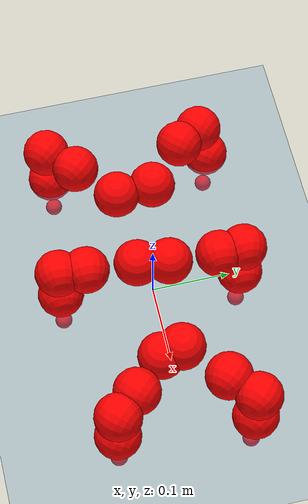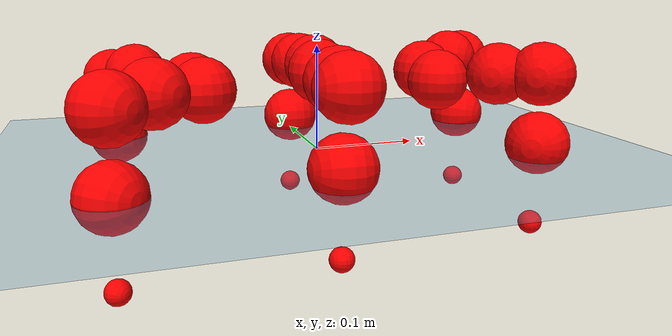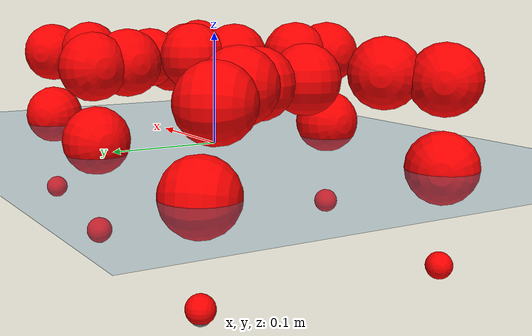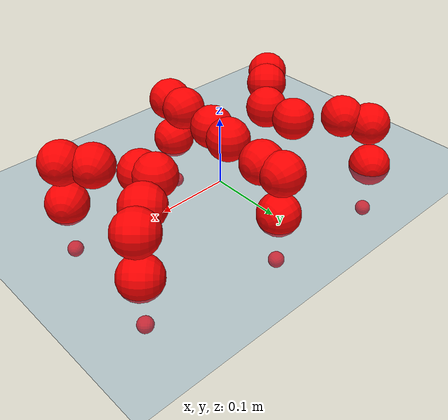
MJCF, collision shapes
<mujoco model="Golem">
  <compiler angle="radian" assetdir="assets" balanceinertia="true" inertiafromgeom="false"/>

  <option timestep="0.005" density="1.2" viscosity="2e-05"/>

  <size nkey="1"/>

  <visual>
    <quality shadowsize="8192"/>
    <map shadowclip="0.5"/>
  </visual>

  <default>
    <default class="/">
      <joint armature="0.01" damping="0.01" frictionloss="0.01"/>
      <geom contype="0" conaffinity="0" group="1" solref="-1000 -80"/>
      <site size="0.01 0.005 0.005" group="5"/>
      <general forcelimited="true" biastype="affine" gainprm="25" biasprm="0 -25 -0.5"/>
      <default class="visual">
        <geom type="mesh" group="2"/>
      </default>
      <default class="collision">
        <geom group="3"/>
      </default>
      <default class="foot">
        <geom size="0.01 0 0" condim="6" group="4" priority="1" solimp="0.015 1 0.01"/>
      </default>
      <default class="reward_collision_sphere">
        <geom group="5" rgba="1 0 0 1"/>
      </default>
    </default>
  </default>

  <asset>
    <texture type="skybox" colorspace="auto" name="//unnamed_texture_0" builtin="gradient" rgb1="0.95 0.95 0.95" rgb2="0.95 0.95 0.95" width="100" height="600"/>
    <texture type="2d" colorspace="auto" name="texplane" builtin="checker" rgb1="0.345 0.575 0.748" rgb2="0.345 0.575 0.748" markrgb="1 1 1" width="512" height="512"/>
    <material name="MatPlane" class="/" texture="texplane" texuniform="true" texrepeat="2 2" specular="0.9"/>
    <mesh name="body" class="/" file="body.stl" scale="0.001 0.001 0.001"/>
    <mesh name="coxa" class="/" file="coxa.stl" scale="0.001 0.001 0.001"/>
    <mesh name="femur" class="/" file="femur.stl" scale="0.001 0.001 0.001"/>
    <mesh name="tibia" class="/" file="tibia.stl" scale="0.001 0.001 0.001"/>
    <mesh name="tarsus" class="/" file="tarsus.stl" scale="0.001 0.001 0.001"/>
  </asset>

  <worldbody>
    <geom name="floor" class="/" size="100 100 0.125" type="plane" group="0" material="MatPlane"/>
    <light name="toplight_shadow" class="/" pos="0 0 5" dir="0.0990148 0.0990148 -0.990148" type="directional" ambient="0.04 0.04 0.04" diffuse="0.55 0.55 0.55" specular="0.12 0.12 0.12"/>
    <light name="toplight_fill" class="/" pos="0 0 5" dir="0.0990148 0.0990148 -0.990148" type="directional" castshadow="false" ambient="0.04 0.04 0.04" diffuse="0.3 0.3 0.3" specular="0.08 0.08 0.08"/>
    <body name="trunk" pos="-0.000636636 0.000680999 0.00183857" quat="0.999993 -0.00325394 0.00154963 0.000617212">
      <inertial pos="0.00170824 -0.00184693 -0.00445528" quat="1 0.000189027 -6.87664e-05 0.000978094" mass="1.34023" diaginertia="0.00213328 6.86448e-05 0.0165982"/>
      <joint name="//unnamed_joint_0" type="free"/>
      <geom name="//unnamed_geom_1" class="/" pos="0 0 0.0705378" quat="1 0 0 0" type="mesh" rgba="0.9 0.9 0.9 1" mesh="body"/>
      <site name="imu" class="/" pos="0.0626651 0.00749869 0.110838" size="0.00733224"/>
      <camera name="track" class="/" pos="0 -0.733704 0" quat="0.707107 0.707107 0 0" mode="trackcom"/>
      <camera name="ego_camera" class="/" pos="0.0949867 0 0.110215" quat="-0.5 -0.5 0.5 0.5"/>
      <body name="coxa_RR" pos="-0.125931 -0.0379096 0.0641153" quat="0.38011 -0.00207437 0.000850984 -0.924938">
        <inertial pos="0.000627974 -0.00117009 -0.00366294" quat="0.999936 -0.00185875 -0.011012 0.00198517" mass="0.0729545" diaginertia="0.00199524 6.37922e-05 0.0151861"/>
        <joint name="coxa_joint_RR" class="/" pos="0 0 0" axis="-0.0141514 -0.00132572 -0.999899" range="-3.0628 3.25318" armature="0.00720374" damping="0.0034784" frictionloss="0.00673485"/>
        <geom name="//unnamed_geom_2" class="/" type="mesh" rgba="0.2 0.2 0.2 1" mesh="coxa"/>
        <geom name="//unnamed_geom_3" class="reward_collision_sphere" size="0.029329" pos="-0.02192 0 0"/>
        <body name="femur_RR" pos="0.041058 -0.000427623 0.00580296" quat="0.499889 -0.499683 0.500852 0.499575">
          <inertial pos="-0.000202867 -0.000380567 -0.00178509" quat="0.999945 -0.0073473 -0.00611905 0.00419725" mass="0.0800106" diaginertia="0.00205711 6.51882e-05 0.0159008"/>
          <joint name="femur_joint_RR" class="/" pos="0 0 0" axis="0.000864866 -0.00219042 -0.999997" stiffness="0.000666377" range="-3.25212 3.16823" armature="0.00922708" damping="0.0116663" frictionloss="0.0068714"/>
          <geom name="//unnamed_geom_4" class="/" type="mesh" rgba="0.9 0.9 0.9 1" mesh="femur"/>
          <geom name="//unnamed_geom_5" class="reward_collision_sphere" size="0.029329"/>
          <body name="tibia_RR" pos="0.00424744 -0.0467654 -0.00176625" quat="0.000668707 0.999999 -0.000219023 -0.00139997">
            <inertial pos="-0.00410654 -0.0012648 0.000117143" quat="0.999942 -0.00297998 0.0103057 2.4474e-05" mass="0.0750639" diaginertia="0.00206228 6.71731e-05 0.0172623"/>
            <joint name="tibia_joint_RR" class="/" pos="0 0 0" axis="-0.00788012 0.0289417 0.99955" range="-3.26039 3.17051" armature="0.00869532" damping="0.022561" frictionloss="0.00648169"/>
            <geom name="//unnamed_geom_6" class="/" type="mesh" rgba="0.2 0.2 0.2 1" mesh="tibia"/>
            <geom name="//unnamed_geom_7" class="reward_collision_sphere" size="0.029329"/>
            <body name="tarsus_RR" pos="0.068597 -0.000615162 0.00257198" quat="1 1.37614e-05 -0.00022085 -0.00026026">
              <inertial pos="0.0474361 -0.00014969 0.00262178" quat="0.504661 0.499162 0.49994 0.4962" mass="0.074956" diaginertia="0.00203609 6.67167e-05 0.0156593"/>
              <joint name="tarsus_joint_RR" class="/" pos="0 0 0" axis="0.00904753 -0.0203753 0.999751" range="-3.1315 3.09223" armature="0.00658917" damping="0" frictionloss="0.00814552"/>
              <geom name="//unnamed_geom_8" class="/" type="mesh" rgba="0.9 0.9 0.9 1" mesh="tarsus"/>
              <geom name="foot_1" class="foot" size="0.00753884" pos="0.0818347 0 0" quat="0 -0.707107 0 0.707107"/>
              <geom name="//unnamed_geom_10" class="reward_collision_sphere" size="0.029329"/>
              <geom name="//unnamed_geom_11" class="reward_collision_sphere" size="0.0109984" pos="0.0785467 0 0"/>
              <site name="foot_1" class="foot" pos="0.0818347 0 0" quat="0 -0.707107 0 0.707107" size="0.00733224"/>
            </body>
          </body>
        </body>
      </body>
      <body name="coxa_RM" pos="-0.00287762 -0.0422521 0.0767156" quat="0.706177 0.000705883 0.00236458 -0.708031">
        <inertial pos="-0.000263424 0.00497278 0.000749398" quat="0.999942 0.0097513 0.00438557 -0.000850704" mass="0.0821302" diaginertia="0.00220113 6.37868e-05 0.015727"/>
        <joint name="coxa_joint_RM" class="/" pos="0 0 0" axis="-0.0228616 -0.00967265 -0.999692" range="-3.1293 3.05368" armature="0.00499817" damping="0.030311" frictionloss="0.0084056"/>
        <geom name="//unnamed_geom_12" class="/" type="mesh" rgba="0.2 0.2 0.2 1" mesh="coxa"/>
        <geom name="//unnamed_geom_13" class="reward_collision_sphere" size="0.029329" pos="-0.02192 0 0"/>
        <body name="femur_RM" pos="0.0416575 -0.00399117 0.000428771" quat="0.499895 -0.500048 0.499957 0.5001">
          <inertial pos="-0.00209068 0.000853525 0.00169519" quat="0.999957 -0.00842241 0.00361839 -0.00147575" mass="0.0755097" diaginertia="0.00215741 6.363e-05 0.0155921"/>
          <joint name="femur_joint_RM" class="/" pos="0 0 0" axis="0.00137104 0.00443571 -0.999989" range="-3.1263 3.11135" armature="0.00668861" damping="0" frictionloss="0.00641425"/>
          <geom name="//unnamed_geom_14" class="/" type="mesh" rgba="0.9 0.9 0.9 1" mesh="femur"/>
          <geom name="//unnamed_geom_15" class="reward_collision_sphere" size="0.029329"/>
          <body name="tibia_RM" pos="0.0003723 -0.0341351 -0.00310889" quat="0.000739546 0.999999 -0.000961855 -0.000280272">
            <inertial pos="0.000504598 -0.00223221 0.00515234" quat="0.999733 -0.0147424 0.0176508 -0.00207104" mass="0.078148" diaginertia="0.00196838 6.90346e-05 0.0156092"/>
            <joint name="tibia_joint_RM" class="/" pos="0 0 0" axis="0.00386401 -0.00362338 0.999986" range="-3.09606 3.13695" armature="0.00553687" damping="0.00213636" frictionloss="0.00481164"/>
            <geom name="//unnamed_geom_16" class="/" type="mesh" rgba="0.2 0.2 0.2 1" mesh="tibia"/>
            <geom name="//unnamed_geom_17" class="reward_collision_sphere" size="0.029329"/>
            <body name="tarsus_RM" pos="0.0654939 -0.000573264 0.00312856" quat="1 0.00015303 0.000136882 -1.30661e-06">
              <inertial pos="0.0414545 -0.000558807 -0.00140632" quat="0.508165 0.490401 0.498791 0.502476" mass="0.0809035" diaginertia="0.00206795 6.65123e-05 0.0167231"/>
              <joint name="tarsus_joint_RM" class="/" pos="0 0 0" axis="0.00218734 -0.00105179 0.999997" range="-3.2613 3.12551" armature="0.00460662" damping="0" frictionloss="0.00798348"/>
              <geom name="//unnamed_geom_18" class="/" type="mesh" rgba="0.9 0.9 0.9 1" mesh="tarsus"/>
              <geom name="foot_2" class="foot" size="0.00575539" pos="0.0818347 0 0" quat="0 -0.707107 0 0.707107"/>
              <geom name="//unnamed_geom_20" class="reward_collision_sphere" size="0.029329"/>
              <geom name="//unnamed_geom_21" class="reward_collision_sphere" size="0.0109984" pos="0.0785467 0 0"/>
              <site name="foot_2" class="foot" pos="0.0818347 0 0" quat="0 -0.707107 0 0.707107" size="0.00733224"/>
            </body>
          </body>
        </body>
      </body>
      <body name="coxa_RF" pos="0.134926 -0.0338419 0.0633746" quat="0.923944 0.000481455 -0.000271579 -0.382527">
        <inertial pos="0.00333001 0.00751098 -0.00198503" quat="0.999892 0.0035349 -0.00283008 0.0139494" mass="0.0770404" diaginertia="0.00199716 6.77977e-05 0.0161102"/>
        <joint name="coxa_joint_RF" class="/" pos="0 0 0" axis="0.000131253 0.000535487 -1" range="-3.14031 3.0237" armature="0.00794048" damping="0.0177693" frictionloss="0.00647"/>
        <geom name="//unnamed_geom_22" class="/" type="mesh" rgba="0.2 0.2 0.2 1" mesh="coxa"/>
        <geom name="//unnamed_geom_23" class="reward_collision_sphere" size="0.029329" pos="-0.02192 0 0"/>
        <body name="femur_RF" pos="0.0358869 0.00164544 0.00916252" quat="0.501817 -0.498592 0.500756 0.498829">
          <inertial pos="0.00139924 0.00305918 -0.00564594" quat="0.99953 -0.0194885 -0.0225042 0.00726182" mass="0.0768193" diaginertia="0.00212711 7.13882e-05 0.0157962"/>
          <joint name="femur_joint_RF" class="/" pos="0 0 0" axis="0.000297654 0.00403829 -0.999992" stiffness="0.00696783" range="-3.19267 3.1421" armature="0.00788813" damping="0.00962558" frictionloss="0.00935376"/>
          <geom name="//unnamed_geom_24" class="/" type="mesh" rgba="0.9 0.9 0.9 1" mesh="femur"/>
          <geom name="//unnamed_geom_25" class="reward_collision_sphere" size="0.029329"/>
          <body name="tibia_RF" pos="-0.00242683 -0.039938 -0.000832813" quat="0.00024387 0.999999 0.00144372 0.000487897">
            <inertial pos="-0.00113221 -0.00109609 -0.000464234" quat="0.999922 0.00039751 0.0107314 -0.00643985" mass="0.0776683" diaginertia="0.00204772 6.57253e-05 0.0155534"/>
            <joint name="tibia_joint_RF" class="/" pos="0 0 0" axis="-0.0216254 -0.0121562 0.999692" range="-3.18016 3.12836" armature="0.00703859" damping="0.0203471" frictionloss="0.00742876"/>
            <geom name="//unnamed_geom_26" class="/" type="mesh" rgba="0.2 0.2 0.2 1" mesh="tibia"/>
            <geom name="//unnamed_geom_27" class="reward_collision_sphere" size="0.029329"/>
            <body name="tarsus_RF" pos="0.064066 0.000653704 0.00119791" quat="0.999996 -9.04553e-05 0.000104874 -0.00271395">
              <inertial pos="0.0495312 0.000718456 -0.00715002" quat="0.49997 0.502784 0.509658 0.487327" mass="0.0860269" diaginertia="0.00207984 6.92552e-05 0.0178792"/>
              <joint name="tarsus_joint_RF" class="/" pos="0 0 0" axis="-0.0112916 0.0285871 0.999528" range="-3.26301 3.17378" armature="0.00726949" damping="0.00194372" frictionloss="0.00642479"/>
              <geom name="//unnamed_geom_28" class="/" type="mesh" rgba="0.9 0.9 0.9 1" mesh="tarsus"/>
              <geom name="foot_3" class="foot" size="0.00767874" pos="0.0818347 0 0" quat="0 -0.707107 0 0.707107"/>
              <geom name="//unnamed_geom_30" class="reward_collision_sphere" size="0.029329"/>
              <geom name="//unnamed_geom_31" class="reward_collision_sphere" size="0.0109984" pos="0.0785467 0 0"/>
              <site name="foot_3" class="foot" pos="0.0818347 0 0" quat="0 -0.707107 0 0.707107" size="0.00733224"/>
            </body>
          </body>
        </body>
      </body>
      <body name="coxa_LR" pos="-0.130186 0.0403737 0.0634355" quat="0.381402 -0.000415992 -0.00245868 0.924406">
        <inertial pos="-0.00517737 0.000931225 0.00191885" quat="0.99984 -0.0175587 -0.00259084 -0.00221735" mass="0.0783938" diaginertia="0.0021219 6.60288e-05 0.0161623"/>
        <joint name="coxa_joint_LR" class="/" pos="0 0 0" axis="0.00255947 -0.030349 -0.999536" range="-3.18133 3.18367" armature="0.00714949" damping="0.040008" frictionloss="0.00706551"/>
        <geom name="//unnamed_geom_32" class="/" type="mesh" rgba="0.2 0.2 0.2 1" mesh="coxa"/>
        <geom name="//unnamed_geom_33" class="reward_collision_sphere" size="0.029329" pos="-0.02192 0 0"/>
        <body name="femur_LR" pos="0.0461223 0.00106149 0.00496972" quat="0.498025 -0.500987 0.499635 0.501346">
          <inertial pos="0.000848607 -0.00225187 0.00219275" quat="0.999992 -0.00319667 -0.00215751 0.00107452" mass="0.0744247" diaginertia="0.00201528 6.52214e-05 0.0157385"/>
          <joint name="femur_joint_LR" class="/" pos="0 0 0" axis="-0.000876635 0.000545442 0.999999" stiffness="0.00960032" range="-3.15001 2.99048" armature="0.00641847" damping="0.0127151" frictionloss="0.0047955"/>
          <geom name="//unnamed_geom_34" class="/" type="mesh" rgba="0.9 0.9 0.9 1" mesh="femur"/>
          <geom name="//unnamed_geom_35" class="reward_collision_sphere" size="0.029329"/>
          <body name="tibia_LR" pos="0.00748397 -0.0372516 -0.00689805" quat="0.00135264 0.999999 0.000177818 0.000375118">
            <inertial pos="0.00165484 -0.00234142 0.00270137" quat="0.999966 -0.00241138 0.00220106 -0.0075126" mass="0.0775949" diaginertia="0.00201791 6.22915e-05 0.0158614"/>
            <joint name="tibia_joint_LR" class="/" pos="0 0 0" axis="0.00233984 0.000821879 -0.999997" range="-3.11067 3.23875" armature="0.00965977" damping="0" frictionloss="0.00766386"/>
            <geom name="//unnamed_geom_36" class="/" type="mesh" rgba="0.2 0.2 0.2 1" mesh="tibia"/>
            <geom name="//unnamed_geom_37" class="reward_collision_sphere" size="0.029329"/>
            <body name="tarsus_LR" pos="0.062659 0.00707819 0.00898996" quat="1 -0.00052188 -0.00034217 0.000131612">
              <inertial pos="0.0464458 0.000650476 -0.00160841" quat="0.499529 0.505835 0.499366 0.495213" mass="0.0804583" diaginertia="0.0021405 6.77386e-05 0.0169115"/>
              <joint name="tarsus_joint_LR" class="/" pos="0 0 0" axis="0.00386126 0.00692818 -0.999969" stiffness="0.00703212" range="-3.25367 3.15365" armature="0.00736516" damping="0.0442948" frictionloss="0.00819346"/>
              <geom name="//unnamed_geom_38" class="/" type="mesh" rgba="0.9 0.9 0.9 1" mesh="tarsus"/>
              <geom name="foot_4" class="foot" size="0.00867666" pos="0.0818347 0 0" quat="0.707107 0 -0.707107 0"/>
              <geom name="//unnamed_geom_40" class="reward_collision_sphere" size="0.029329"/>
              <geom name="//unnamed_geom_41" class="reward_collision_sphere" size="0.0109984" pos="0.0785467 0 0"/>
              <site name="foot_4" class="foot" pos="0.0818347 0 0" quat="0.707107 0 -0.707107 0" size="0.00733224"/>
            </body>
          </body>
        </body>
      </body>
      <body name="coxa_LM" pos="0.00392226 0.0405973 0.0781233" quat="0.705744 0.00243552 0.002063 0.70846">
        <inertial pos="-0.000301534 4.52618e-05 -0.0017384" quat="0.999932 -0.00174176 0.0101518 0.00537832" mass="0.0706221" diaginertia="0.00172655 5.99831e-05 0.0147111"/>
        <joint name="coxa_joint_LM" class="/" pos="0 0 0" axis="0.00109368 0.00299058 -0.999995" range="-3.05683 3.0965" armature="0.00840464" damping="0.00347337" frictionloss="0.00596514"/>
        <geom name="//unnamed_geom_42" class="/" type="mesh" rgba="0.2 0.2 0.2 1" mesh="coxa"/>
        <geom name="//unnamed_geom_43" class="reward_collision_sphere" size="0.029329" pos="-0.02192 0 0"/>
        <body name="femur_LM" pos="0.0408662 -0.00230147 -0.00332835" quat="0.50009 -0.499981 0.499894 0.500035">
          <inertial pos="0.00012217 0.0029692 0.000779647" quat="0.999968 -0.00289509 0.00733696 -0.00127076" mass="0.0885031" diaginertia="0.00221439 7.30465e-05 0.0179413"/>
          <joint name="femur_joint_LM" class="/" pos="0 0 0" axis="-0.000945424 -0.000429367 0.999999" stiffness="0.000870977" range="-3.10259 3.09464" armature="0.00760944" damping="0" frictionloss="0.00659187"/>
          <geom name="//unnamed_geom_44" class="/" type="mesh" rgba="0.9 0.9 0.9 1" mesh="femur"/>
          <geom name="//unnamed_geom_45" class="reward_collision_sphere" size="0.029329"/>
          <body name="tibia_LM" pos="0.00180381 -0.0325872 0.00242962" quat="-0.000148509 0.999999 0.0010341 0.00040113">
            <inertial pos="0.00627932 -0.00760637 0.00214609" quat="1 -0.000225129 -0.000824792 0.000507924" mass="0.0771915" diaginertia="0.00224904 6.91883e-05 0.0171682"/>
            <joint name="tibia_joint_LM" class="/" pos="0 0 0" axis="0.000800286 -0.00167137 -0.999998" stiffness="0.00924855" range="-3.20172 3.1387" armature="0.00723269" damping="0.00106212" frictionloss="0.00779512"/>
            <geom name="//unnamed_geom_46" class="/" type="mesh" rgba="0.2 0.2 0.2 1" mesh="tibia"/>
            <geom name="//unnamed_geom_47" class="reward_collision_sphere" size="0.029329"/>
            <body name="tarsus_LM" pos="0.0630802 -0.00123862 0.00119813" quat="0.999999 0.00106229 -8.70336e-05 0.000112339">
              <inertial pos="0.043739 -0.000944249 0.000289415" quat="0.493305 0.49919 0.498094 0.509276" mass="0.0831241" diaginertia="0.00220301 6.85519e-05 0.0158855"/>
              <joint name="tarsus_joint_LM" class="/" pos="0 0 0" axis="-0.0138217 -0.0140394 -0.999806" range="-3.11058 3.19802" armature="0.0073243" damping="0" frictionloss="0.00880879"/>
              <geom name="//unnamed_geom_48" class="/" type="mesh" rgba="0.9 0.9 0.9 1" mesh="tarsus"/>
              <geom name="foot_5" class="foot" size="0.00803339" pos="0.0818347 0 0" quat="0.707107 0 -0.707107 0"/>
              <geom name="//unnamed_geom_50" class="reward_collision_sphere" size="0.029329"/>
              <geom name="//unnamed_geom_51" class="reward_collision_sphere" size="0.0109984" pos="0.0785467 0 0"/>
              <site name="foot_5" class="foot" pos="0.0818347 0 0" quat="0.707107 0 -0.707107 0" size="0.00733224"/>
            </body>
          </body>
        </body>
      </body>
      <body name="coxa_LF" pos="0.131427 0.0236031 0.0700115" quat="0.923784 -0.000207742 -2.87474e-05 0.382914">
        <inertial pos="-0.00276261 0.00291142 -0.00143852" quat="0.999959 5.17938e-05 0.000342151 0.0090995" mass="0.0834093" diaginertia="0.00219132 7.33227e-05 0.0171152"/>
        <joint name="coxa_joint_LF" class="/" pos="0 0 0" axis="-0.000659061 -0.00220718 -0.999997" stiffness="0.00877716" range="-3.08836 3.12258" armature="0.00719459" damping="0.0129904" frictionloss="0.00703292"/>
        <geom name="//unnamed_geom_52" class="/" type="mesh" rgba="0.2 0.2 0.2 1" mesh="coxa"/>
        <geom name="//unnamed_geom_53" class="reward_collision_sphere" size="0.029329" pos="-0.02192 0 0"/>
        <body name="femur_LF" pos="0.0464248 -0.00536753 0.00615772" quat="0.500063 -0.499786 0.499427 0.500723">
          <inertial pos="-0.000958 0.000817931 -0.00273897" quat="0.999371 -0.0075281 0.0170999 0.0301279" mass="0.0789405" diaginertia="0.00204376 7.08881e-05 0.0165747"/>
          <joint name="femur_joint_LF" class="/" pos="0 0 0" axis="0.00573574 0.000541665 0.999983" range="-3.10454 3.14375" armature="0.00652501" damping="0" frictionloss="0.0100777"/>
          <geom name="//unnamed_geom_54" class="/" type="mesh" rgba="0.9 0.9 0.9 1" mesh="femur"/>
          <geom name="//unnamed_geom_55" class="reward_collision_sphere" size="0.029329"/>
          <body name="tibia_LF" pos="0.00229371 -0.0426056 -0.00227381" quat="0.000222685 1 4.96315e-05 4.45975e-05">
            <inertial pos="0.000990849 -0.000735423 0.00199152" quat="0.999994 1.08995e-05 -0.00079282 0.00323498" mass="0.0769997" diaginertia="0.00205547 6.72833e-05 0.0165162"/>
            <joint name="tibia_joint_LF" class="/" pos="0 0 0" axis="0.00170871 0.00471453 -0.999987" range="-3.00416 3.17719" armature="0.0069533" damping="0" frictionloss="0.00819925"/>
            <geom name="//unnamed_geom_56" class="/" type="mesh" rgba="0.2 0.2 0.2 1" mesh="tibia"/>
            <geom name="//unnamed_geom_57" class="reward_collision_sphere" size="0.029329"/>
            <body name="tarsus_LF" pos="0.0660137 0.000628016 -0.000613993" quat="1 2.55831e-05 -0.000657483 0.000301971">
              <inertial pos="0.044124 -0.000455381 -0.00652809" quat="0.500307 0.497581 0.50162 0.500483" mass="0.0762027" diaginertia="0.0021016 6.61422e-05 0.0166263"/>
              <joint name="tarsus_joint_LF" class="/" pos="0 0 0" axis="-0.00345897 -0.0166855 -0.999855" stiffness="0.0136491" range="-3.13605 3.10809" armature="0.0071631" damping="0.0451063" frictionloss="0.00819731"/>
              <geom name="//unnamed_geom_58" class="/" type="mesh" rgba="0.9 0.9 0.9 1" mesh="tarsus"/>
              <geom name="foot_6" class="foot" size="0.00713346" pos="0.0818347 0 0" quat="0.707107 0 -0.707107 0"/>
              <geom name="//unnamed_geom_60" class="reward_collision_sphere" size="0.029329"/>
              <geom name="//unnamed_geom_61" class="reward_collision_sphere" size="0.0109984" pos="0.0785467 0 0"/>
              <site name="foot_6" class="foot" pos="0.0818347 0 0" quat="0.707107 0 -0.707107 0" size="0.00733224"/>
            </body>
          </body>
        </body>
      </body>
    </body>
  </worldbody>

  <contact>
    <pair class="/" geom1="floor" geom2="foot_1" name="//unnamed_contact_0"/>
    <pair class="/" geom1="floor" geom2="foot_2" name="//unnamed_contact_1"/>
    <pair class="/" geom1="floor" geom2="foot_3" name="//unnamed_contact_2"/>
    <pair class="/" geom1="floor" geom2="foot_4" name="//unnamed_contact_3"/>
    <pair class="/" geom1="floor" geom2="foot_5" name="//unnamed_contact_4"/>
    <pair class="/" geom1="floor" geom2="foot_6" name="//unnamed_contact_5"/>
  </contact>

  <actuator>
    <general name="coxa_joint_RR" class="/" joint="coxa_joint_RR" forcerange="-4.76022 4.76022" gainprm="21.424" biasprm="0 -21.424 -0.426332"/>
    <general name="femur_joint_RR" class="/" joint="femur_joint_RR" forcerange="-5.37106 5.37106" gainprm="21.424" biasprm="0 -21.424 -0.426332"/>
    <general name="tibia_joint_RR" class="/" joint="tibia_joint_RR" forcerange="-4.98543 4.98543" gainprm="21.424" biasprm="0 -21.424 -0.426332"/>
    <general name="tarsus_joint_RR" class="/" joint="tarsus_joint_RR" forcerange="-5.79162 5.79162" gainprm="21.424" biasprm="0 -21.424 -0.426332"/>
    <general name="coxa_joint_RM" class="/" joint="coxa_joint_RM" forcerange="-4.72904 4.72904" gainprm="21.424" biasprm="0 -21.424 -0.426332"/>
    <general name="femur_joint_RM" class="/" joint="femur_joint_RM" forcerange="-4.49275 4.49275" gainprm="21.424" biasprm="0 -21.424 -0.426332"/>
    <general name="tibia_joint_RM" class="/" joint="tibia_joint_RM" forcerange="-5.37271 5.37271" gainprm="21.424" biasprm="0 -21.424 -0.426332"/>
    <general name="tarsus_joint_RM" class="/" joint="tarsus_joint_RM" forcerange="-3.98665 3.98665" gainprm="21.424" biasprm="0 -21.424 -0.426332"/>
    <general name="coxa_joint_RF" class="/" joint="coxa_joint_RF" forcerange="-4.2644 4.2644" gainprm="21.424" biasprm="0 -21.424 -0.426332"/>
    <general name="femur_joint_RF" class="/" joint="femur_joint_RF" forcerange="-6.45466 6.45466" gainprm="21.424" biasprm="0 -21.424 -0.426332"/>
    <general name="tibia_joint_RF" class="/" joint="tibia_joint_RF" forcerange="-5.30377 5.30377" gainprm="21.424" biasprm="0 -21.424 -0.426332"/>
    <general name="tarsus_joint_RF" class="/" joint="tarsus_joint_RF" forcerange="-5.72733 5.72733" gainprm="21.424" biasprm="0 -21.424 -0.426332"/>
    <general name="coxa_joint_LR" class="/" joint="coxa_joint_LR" forcerange="-5.24051 5.24051" gainprm="21.424" biasprm="0 -21.424 -0.426332"/>
    <general name="femur_joint_LR" class="/" joint="femur_joint_LR" forcerange="-5.87578 5.87578" gainprm="21.424" biasprm="0 -21.424 -0.426332"/>
    <general name="tibia_joint_LR" class="/" joint="tibia_joint_LR" forcerange="-5.33733 5.33733" gainprm="21.424" biasprm="0 -21.424 -0.426332"/>
    <general name="tarsus_joint_LR" class="/" joint="tarsus_joint_LR" forcerange="-4.88067 4.88067" gainprm="21.424" biasprm="0 -21.424 -0.426332"/>
    <general name="coxa_joint_LM" class="/" joint="coxa_joint_LM" forcerange="-5.3162 5.3162" gainprm="21.424" biasprm="0 -21.424 -0.426332"/>
    <general name="femur_joint_LM" class="/" joint="femur_joint_LM" forcerange="-5.27886 5.27886" gainprm="21.424" biasprm="0 -21.424 -0.426332"/>
    <general name="tibia_joint_LM" class="/" joint="tibia_joint_LM" forcerange="-6.70099 6.70099" gainprm="21.424" biasprm="0 -21.424 -0.426332"/>
    <general name="tarsus_joint_LM" class="/" joint="tarsus_joint_LM" forcerange="-5.28021 5.28021" gainprm="21.424" biasprm="0 -21.424 -0.426332"/>
    <general name="coxa_joint_LF" class="/" joint="coxa_joint_LF" forcerange="-4.47214 4.47214" gainprm="21.424" biasprm="0 -21.424 -0.426332"/>
    <general name="femur_joint_LF" class="/" joint="femur_joint_LF" forcerange="-4.40328 4.40328" gainprm="21.424" biasprm="0 -21.424 -0.426332"/>
    <general name="tibia_joint_LF" class="/" joint="tibia_joint_LF" forcerange="-5.21848 5.21848" gainprm="21.424" biasprm="0 -21.424 -0.426332"/>
    <general name="tarsus_joint_LF" class="/" joint="tarsus_joint_LF" forcerange="-5.03687 5.03687" gainprm="21.424" biasprm="0 -21.424 -0.426332"/>
  </actuator>

  <sensor>
    <gyro site="imu" name="imu_angular_velocity"/>
    <velocimeter site="imu" name="imu_linear_velocity"/>
    <framelinvel objtype="site" objname="foot_1" name="foot_1_global_linear_velocity"/>
    <framelinvel objtype="site" objname="foot_2" name="foot_2_global_linear_velocity"/>
    <framelinvel objtype="site" objname="foot_3" name="foot_3_global_linear_velocity"/>
    <framelinvel objtype="site" objname="foot_4" name="foot_4_global_linear_velocity"/>
    <framelinvel objtype="site" objname="foot_5" name="foot_5_global_linear_velocity"/>
    <framelinvel objtype="site" objname="foot_6" name="foot_6_global_linear_velocity"/>
  </sensor>

  <keyframe>
    <key name="home" qpos="0 0 0.1457 1 0 0 0 0 0 0 0 0 0 0 0 0 0 0 0 0 0 0 0 0 0 0 0 0 0 0 0"/>
  </keyframe>
</mujoco>
